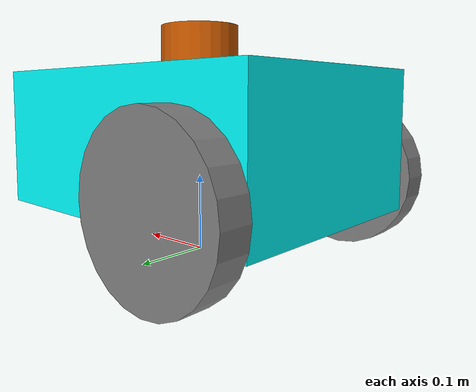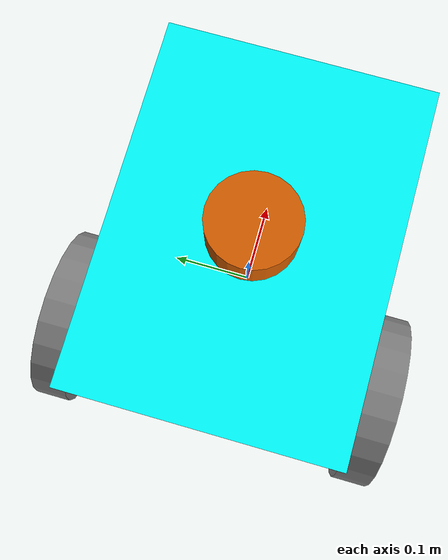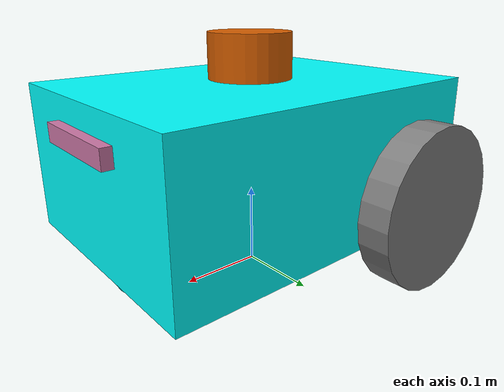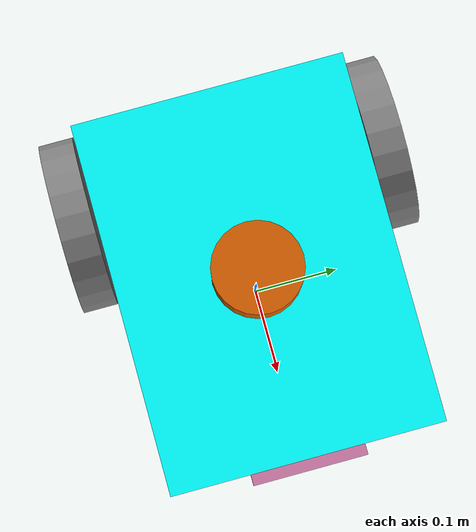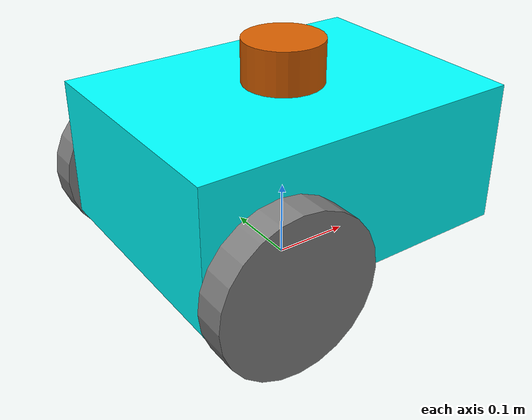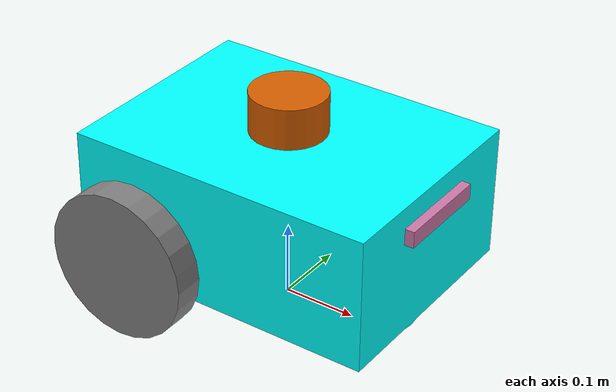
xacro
<?xml version="1.0"?>
<robot name="sam_bot" xmlns:xacro="http://ros.org/wiki/xacro">

  <!-- Define inertial property macros -->
  <xacro:macro name="box_inertia" params="m w h d">
    <inertial>
      <origin xyz="0 0 0" rpy="${pi/2} 0 ${pi/2}"/>
      <mass value="${m}"/>
      <inertia ixx="${(m/12) * (h*h + d*d)}" ixy="0.0" ixz="0.0"
               iyy="${(m/12) * (w*w + d*d)}" iyz="0.0"
               izz="${(m/12) * (w*w + h*h)}"/>
    </inertial>
  </xacro:macro>

  <xacro:macro name="cylinder_inertia" params="m r h">
    <inertial>
      <origin xyz="0 0 0" rpy="${pi/2} 0 0" />
      <mass value="${m}"/>
      <inertia ixx="${(m/12) * (3*r*r + h*h)}" ixy="0" ixz="0"
               iyy="${(m/12) * (3*r*r + h*h)}" iyz="0"
               izz="${(m/2) * (r*r)}"/>
    </inertial>
  </xacro:macro>

  <xacro:macro name="sphere_inertia" params="m r">
    <inertial>
      <mass value="${m}"/>
      <inertia ixx="${(2/5)*m*(r*r)}" ixy="0" ixz="0"
               iyy="${(2/5)*m*(r*r)}" iyz="0"
               izz="${(2/5)*m*(r*r)}"/>
    </inertial>
  </xacro:macro>

  <!-- Define robot constants -->
  <xacro:property name="base_width" value="0.31"/>
  <xacro:property name="base_length" value="0.42"/>
  <xacro:property name="base_height" value="0.18"/>
  <xacro:property name="wheel_radius" value="0.10"/>
  <xacro:property name="wheel_width" value="0.04"/>
  <xacro:property name="wheel_ygap" value="0.025"/>
  <xacro:property name="wheel_zoff" value="0.05"/>
  <xacro:property name="wheel_xoff" value="0.12"/>
  <xacro:property name="caster_xoff" value="0.14"/>

  <!-- Base link with inertia -->
  <link name="base_link">
    <visual>
      <geometry>
        <box size="${base_length} ${base_width} ${base_height}"/>
      </geometry>
      <material name="Cyan">
        <color rgba="0 1.0 1.0 1.0"/>
      </material>
    </visual>
    <collision>
      <geometry>
        <box size="${base_length} ${base_width} ${base_height}"/>
      </geometry>
    </collision>
    <xacro:box_inertia m="15" w="${base_width}" d="${base_length}" h="${base_height}"/>
  </link>

  <!-- Footprint and fixed joint to base -->
  <link name="base_footprint"/>
  <joint name="base_joint" type="fixed">
    <parent link="base_footprint"/>
    <child link="base_link"/>
    <origin xyz="0.0 0.0 ${wheel_radius+wheel_zoff}" rpy="0 0 0"/>
  </joint>

  <!-- Wheels -->
  <xacro:macro name="wheel" params="prefix x_reflect y_reflect">
    <link name="${prefix}_link">
      <visual>
        <origin xyz="0 0 0" rpy="${pi/2} 0 0"/>
        <geometry>
          <cylinder radius="${wheel_radius}" length="${wheel_width}"/>
        </geometry>
        <material name="Gray">
          <color rgba="0.5 0.5 0.5 1.0"/>
        </material>
      </visual>
      <collision>
        <origin xyz="0 0 0" rpy="${pi/2} 0 0"/>
        <geometry>
          <cylinder radius="${wheel_radius}" length="${wheel_width}"/>
        </geometry>
      </collision>
      <xacro:cylinder_inertia m="0.5" r="${wheel_radius}" h="${wheel_width}"/>
    </link>
    <joint name="${prefix}_joint" type="continuous">
      <parent link="base_link"/>
      <child link="${prefix}_link"/>
      <origin xyz="${x_reflect*wheel_xoff} ${y_reflect*(base_width/2+wheel_ygap)} ${-wheel_zoff}" rpy="0 0 0"/>
      <axis xyz="0 1 0"/>
    </joint>
  </xacro:macro>

  <xacro:wheel prefix="drivewhl_l" x_reflect="-1" y_reflect="1"/>
  <xacro:wheel prefix="drivewhl_r" x_reflect="-1" y_reflect="-1"/>

  <!-- Caster wheel -->
  <link name="front_caster">
    <visual>
      <geometry>
        <sphere radius="${(wheel_radius+wheel_zoff-(base_height/2))}"/>
      </geometry>
      <material name="Cyan">
        <color rgba="0 1.0 1.0 1.0"/>
      </material>
    </visual>
    <collision>
      <geometry>
        <sphere radius="${(wheel_radius+wheel_zoff-(base_height/2))}"/>
      </geometry>
    </collision>
    <xacro:sphere_inertia m="0.5" r="${(wheel_radius+wheel_zoff-(base_height/2))}"/>
  </link>
  <joint name="caster_joint" type="fixed">
    <parent link="base_link"/>
    <child link="front_caster"/>
    <origin xyz="${caster_xoff} 0.0 ${-(base_height/2)}" rpy="0 0 0"/>
  </joint>

  <!-- Differential Drive Plugin -->
<gazebo>
  <plugin name="diff_drive" filename="libgazebo_ros_diff_drive.so">
    <ros>
      <remapping>cmd_vel:=/cmd_vel</remapping>
      <remapping>odom:=/odom</remapping>
    </ros>
    <update_rate>50.0</update_rate>
    <left_joint>drivewhl_l_joint</left_joint>
    <right_joint>drivewhl_r_joint</right_joint>
    <wheel_separation>${base_width}</wheel_separation>
    <wheel_diameter>${2*wheel_radius}</wheel_diameter>
    <odom_frame>odom</odom_frame>
    <base_frame>base_footprint</base_frame>
    <publish_odom>true</publish_odom>
    <publish_odom_tf>true</publish_odom_tf>
    <publish_wheel_tf>true</publish_wheel_tf>
  </plugin>
</gazebo>

  <!-- Reduce caster friction -->
  <gazebo reference="front_caster">
    <mu1 value="0.5"/>
    <mu2 value="0.5"/>
  </gazebo>

  <!-- IMU Sensor -->
  <gazebo reference="base_link">
    <sensor name="imu_sensor" type="imu">
      <always_on>true</always_on>
      <update_rate>50.0</update_rate>
      <visualize>false</visualize>
      <plugin name="imu_plugin" filename="libgazebo_ros_imu_sensor.so">
        <ros>
          <namespace>/sam_bot</namespace>
          <remapping>~/out:=imu</remapping>
        </ros>
        <frame_name>base_link</frame_name>
      </plugin>
    </sensor>
  </gazebo>

  <!-- LiDAR -->
  <link name="lidar_link">
    <inertial>
      <mass value="0.125"/>
      <inertia ixx="0.001" iyy="0.001" izz="0.001" ixy="0" ixz="0" iyz="0"/>
    </inertial>
    <visual>
      <geometry><cylinder radius="0.0508" length="0.055"/></geometry>
    </visual>
    <collision>
      <geometry><cylinder radius="0.0508" length="0.055"/></geometry>
    </collision>
  </link>

  <joint name="lidar_joint" type="fixed">
    <parent link="base_link"/>
    <child link="lidar_link"/>
    <origin xyz="0 0 0.12" rpy="0 0 0"/>
  </joint>

  <gazebo reference="lidar_link">
    <sensor name="lidar" type="ray">
      <always_on>true</always_on>
      <visualize>true</visualize>
      <update_rate>5</update_rate>
      <ray>
        <scan>
          <horizontal>
            <samples>360</samples>
            <resolution>1.0</resolution>
            <min_angle>0.0</min_angle>
            <max_angle>6.28</max_angle>
          </horizontal>
        </scan>
        <range>
          <min>0.12</min>
          <max>3.5</max>
          <resolution>0.015</resolution>
        </range>
        <noise>
          <type>gaussian</type>
          <mean>0.0</mean>
          <stddev>0.01</stddev>
        </noise>
      </ray>
      <plugin name="scan" filename="libgazebo_ros_ray_sensor.so">
        <ros>
          <remapping>~/out:=scan</remapping>
        </ros>
        <output_type>sensor_msgs/LaserScan</output_type>
        <frame_name>lidar_link</frame_name>
      </plugin>
    </sensor>
  </gazebo>

  <!-- Depth Camera -->
  <link name="camera_link">
    <visual>
      <geometry><box size="0.015 0.130 0.022"/></geometry>
    </visual>
    <collision>
      <geometry><box size="0.015 0.130 0.022"/></geometry>
    </collision>
    <inertial>
      <mass value="0.035"/>
      <inertia ixx="0.001" iyy="0.001" izz="0.001" ixy="0" ixz="0" iyz="0"/>
    </inertial>
  </link>

  <joint name="camera_joint" type="fixed">
    <parent link="base_link"/>
    <child link="camera_link"/>
    <origin xyz="0.215 0 0.05" rpy="0 0 0"/>
  </joint>

  <link name="camera_depth_frame"/>
  <joint name="camera_depth_joint" type="fixed">
    <parent link="camera_link"/>
    <child link="camera_depth_frame"/>
    <origin xyz="0 0 0" rpy="${-pi/2} 0 ${-pi/2}"/>
  </joint>

  <gazebo reference="camera_link">
    <sensor name="depth_camera" type="depth">
      <visualize>true</visualize>
      <update_rate>30.0</update_rate>
      <camera name="camera">
        <horizontal_fov>1.047198</horizontal_fov>
        <image><width>640</width><height>480</height><format>R8G8B8</format></image>
        <clip><near>0.05</near><far>3</far></clip>
      </camera>
      <plugin name="depth_camera_controller" filename="libgazebo_ros_camera.so">
        <frame_name>camera_depth_frame</frame_name>
      </plugin>
    </sensor>
  </gazebo>

</robot>
